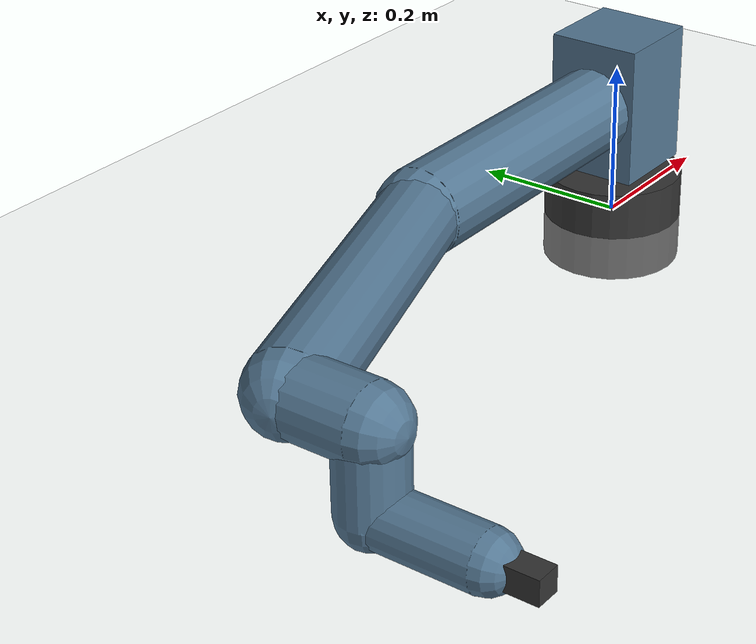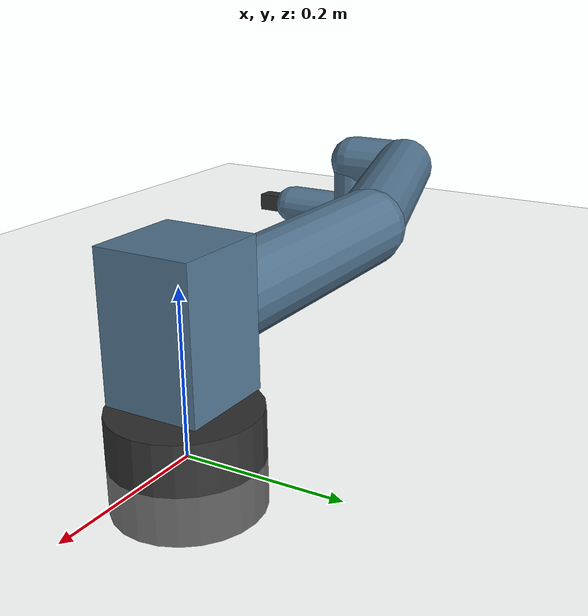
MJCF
<mujoco model="ur5e_lab4_torque">
  <compiler angle="radian" autolimits="true"/>
  <option timestep="0.001" gravity="0 0 -9.81" integrator="RK4"/>

  <default>
    <joint damping="1.0" armature="0.01" limited="true"/>
    <geom rgba="0.33 0.47 0.58 1" density="800"/>
    <motor ctrllimited="true" ctrlrange="-180 180"/>
  </default>

  <worldbody>
    <geom type="plane" size="2 2 0.1" rgba="0.92 0.92 0.92 1"/>
    <body name="base" pos="0 0 0">
      <geom type="cylinder" size="0.09 0.06" rgba="0.20 0.20 0.20 1"/>
      <body name="shoulder" pos="0 0 0.1625" euler="0 0 0">
        <joint name="shoulder_pan_joint" axis="0 0 1" range="-6.28318530718 6.28318530718"/>
        <geom type="box" size="0.06 0.06 0.09"/>
        <body name="upper_arm" pos="0 0 0" euler="1.57079632679 0 0">
          <joint name="shoulder_lift_joint" axis="0 0 1" range="-6.28318530718 6.28318530718"/>
          <geom type="capsule" fromto="0 0 0 -0.425 0 0" size="0.055"/>
          <body name="forearm" pos="-0.425 0 0" euler="0 0 0">
            <joint name="elbow_joint" axis="0 0 1" range="-6.28318530718 6.28318530718"/>
            <geom type="capsule" fromto="0 0 0 -0.3922 0 0.1333" size="0.05"/>
            <body name="wrist_1" pos="-0.3922 0 0.1333" euler="0 0 0">
              <joint name="wrist_1_joint" axis="0 0 1" range="-6.28318530718 6.28318530718"/>
              <geom type="capsule" fromto="0 0 0 0 0 0.0997" size="0.045"/>
              <body name="wrist_2" pos="0 0 0.0997" euler="1.57079632679 0 0">
                <joint name="wrist_2_joint" axis="0 0 1" range="-6.28318530718 6.28318530718"/>
                <geom type="capsule" fromto="0 0 0 0 0 0.0996" size="0.04"/>
                <body name="wrist_3" pos="0 0 0.0996" euler="-1.57079632679 0 0">
                  <joint name="wrist_3_joint" axis="0 0 1" range="-6.28318530718 6.28318530718"/>
                  <geom type="capsule" fromto="0 0 0 0 0 0.135" size="0.035"/>
                  <body name="tool0" pos="0 0 0.135">
                    <geom type="box" size="0.015 0.015 0.0675" rgba="0.20 0.20 0.20 1"/>
                    <site name="tool_site" pos="0 0 0" size="0.012" rgba="1 0.2 0.2 1"/>
                  </body>
                </body>
              </body>
            </body>
          </body>
        </body>
      </body>
    </body>
  </worldbody>

  <actuator>
    <motor name="motor1" joint="shoulder_pan_joint"/>
    <motor name="motor2" joint="shoulder_lift_joint"/>
    <motor name="motor3" joint="elbow_joint"/>
    <motor name="motor4" joint="wrist_1_joint"/>
    <motor name="motor5" joint="wrist_2_joint"/>
    <motor name="motor6" joint="wrist_3_joint"/>
  </actuator>
</mujoco>
